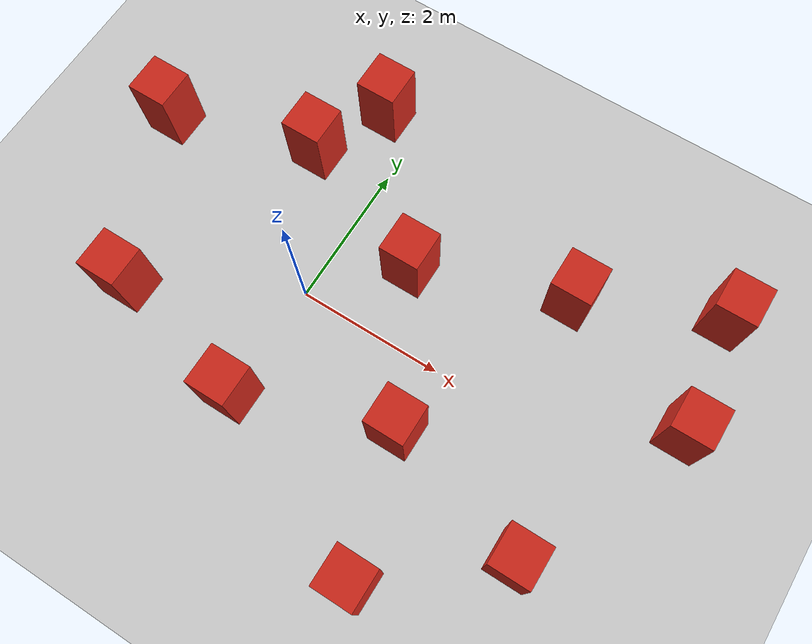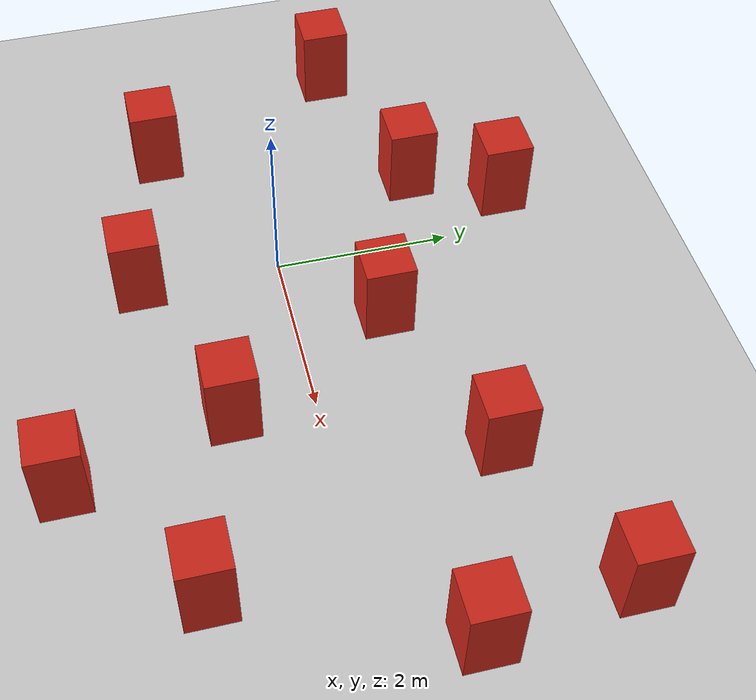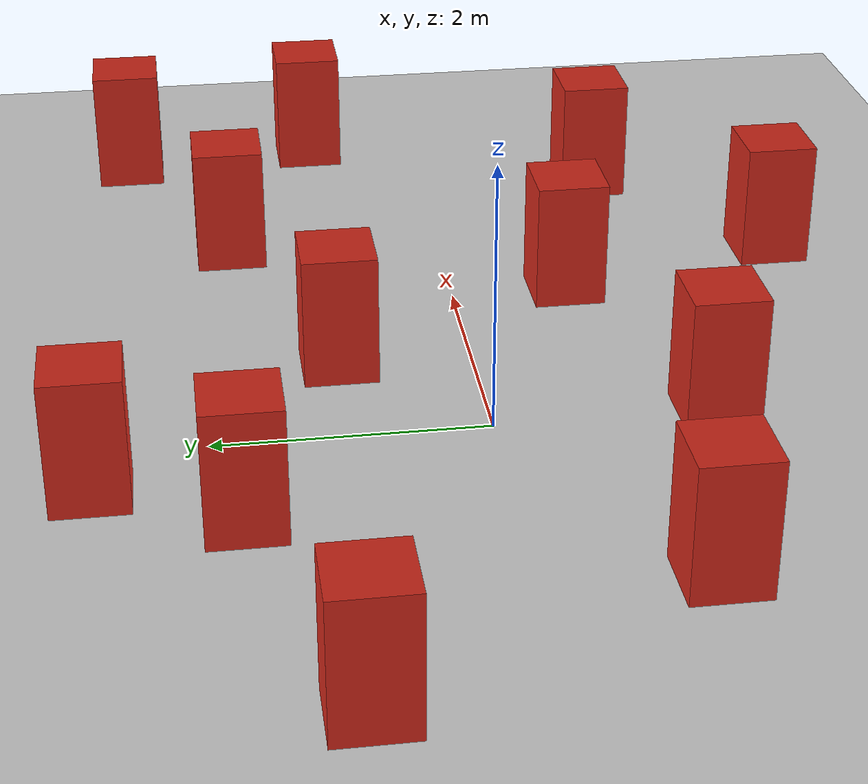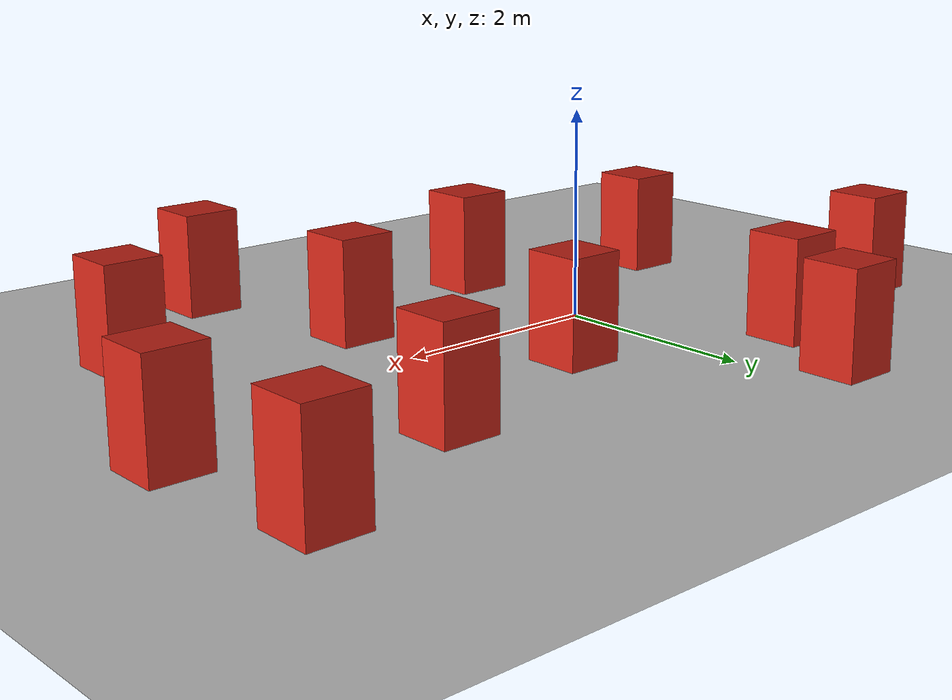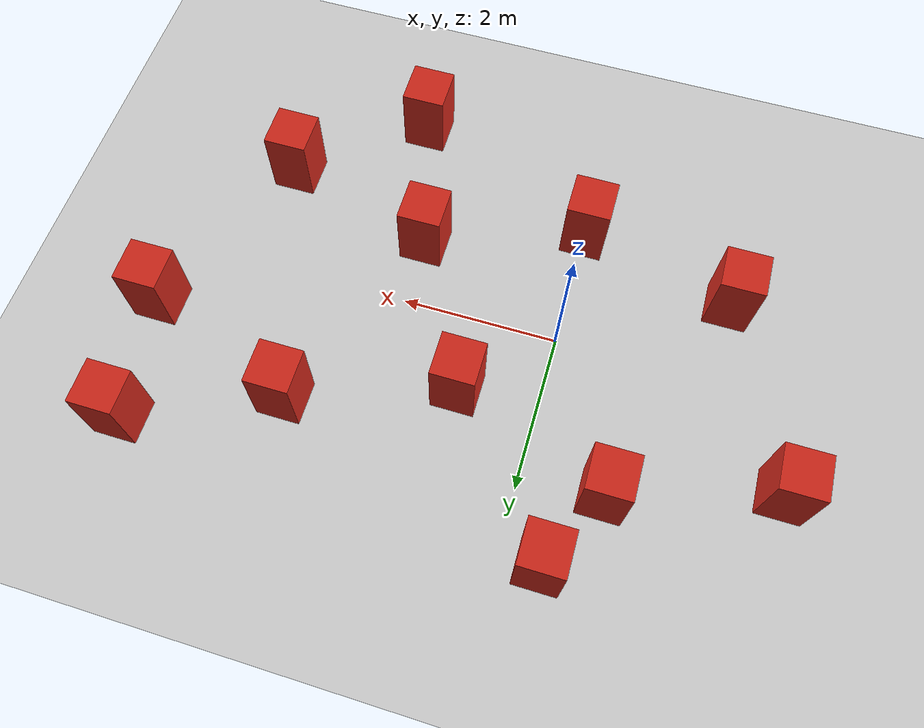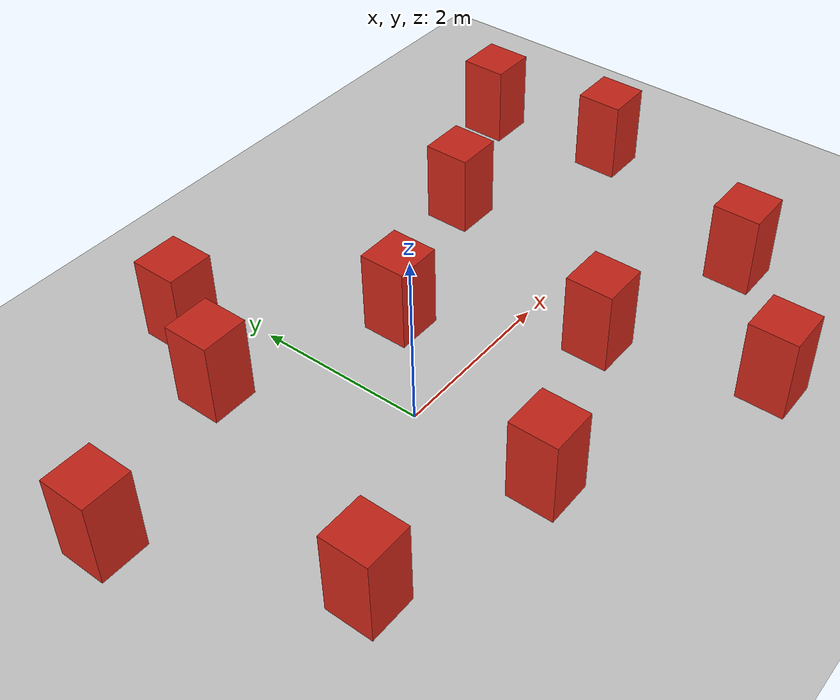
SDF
<?xml version="1.0"?>
<sdf version="1.6"><world name="static_dense"><physics name="default_physics" type="ode"><max_step_size>0.001</max_step_size><real_time_update_rate>1000</real_time_update_rate></physics><plugin name="gazebo_ros_state" filename="libgazebo_ros_state.so"><update_rate>50</update_rate></plugin><include><uri>model://ground_plane</uri></include><include><uri>model://sun</uri></include>
<include><name>obstacle_dense_01</name><uri>model://r680_obstacle_box</uri><pose>-3 1.2 0.5 0 0 0</pose><static>true</static></include><include><name>obstacle_dense_02</name><uri>model://r680_obstacle_box</uri><pose>-2 -1.1 0.5 0 0 0</pose><static>true</static></include>
<include><name>obstacle_dense_03</name><uri>model://r680_obstacle_box</uri><pose>-1 1.8 0.5 0 0 0</pose><static>true</static></include><include><name>obstacle_dense_04</name><uri>model://r680_obstacle_box</uri><pose>0 -1.6 0.5 0 0 0</pose><static>true</static></include>
<include><name>obstacle_dense_05</name><uri>model://r680_obstacle_box</uri><pose>1 1.0 0.5 0 0 0</pose><static>true</static></include><include><name>obstacle_dense_06</name><uri>model://r680_obstacle_box</uri><pose>2.0 -0.9 0.5 0 0 0</pose><static>true</static></include>
<include><name>obstacle_dense_07</name><uri>model://r680_obstacle_box</uri><pose>3.0 1.7 0.5 0 0 0</pose><static>true</static></include><include><name>obstacle_dense_08</name><uri>model://r680_obstacle_box</uri><pose>4.0 -1.5 0.5 0 0 0</pose><static>true</static></include>
<include><name>obstacle_dense_09</name><uri>model://r680_obstacle_box</uri><pose>5.0 0.9 0.5 0 0 0</pose><static>true</static></include><include><name>obstacle_dense_10</name><uri>model://r680_obstacle_box</uri><pose>-0.5 2.8 0.5 0 0 0</pose><static>true</static></include>
<include><name>obstacle_dense_11</name><uri>model://r680_obstacle_box</uri><pose>2.5 -2.7 0.5 0 0 0</pose><static>true</static></include><include><name>obstacle_dense_12</name><uri>model://r680_obstacle_box</uri><pose>4.8 2.5 0.5 0 0 0</pose><static>true</static></include></world></sdf>

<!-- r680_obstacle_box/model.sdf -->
<sdf version="1.6"><model name="r680_obstacle_box"><static>false</static><allow_auto_disable>false</allow_auto_disable><link name="body"><gravity>false</gravity><inertial><mass>20</mass><inertia><ixx>0.8</ixx><iyy>0.8</iyy><izz>0.8</izz></inertia></inertial><collision name="collision"><geometry><box><size>0.55 0.55 1.0</size></box></geometry></collision><visual name="visual"><geometry><box><size>0.55 0.55 1.0</size></box></geometry><material><ambient>0.8 0.15 0.1 1</ambient><diffuse>0.8 0.15 0.1 1</diffuse></material></visual></link></model></sdf>
